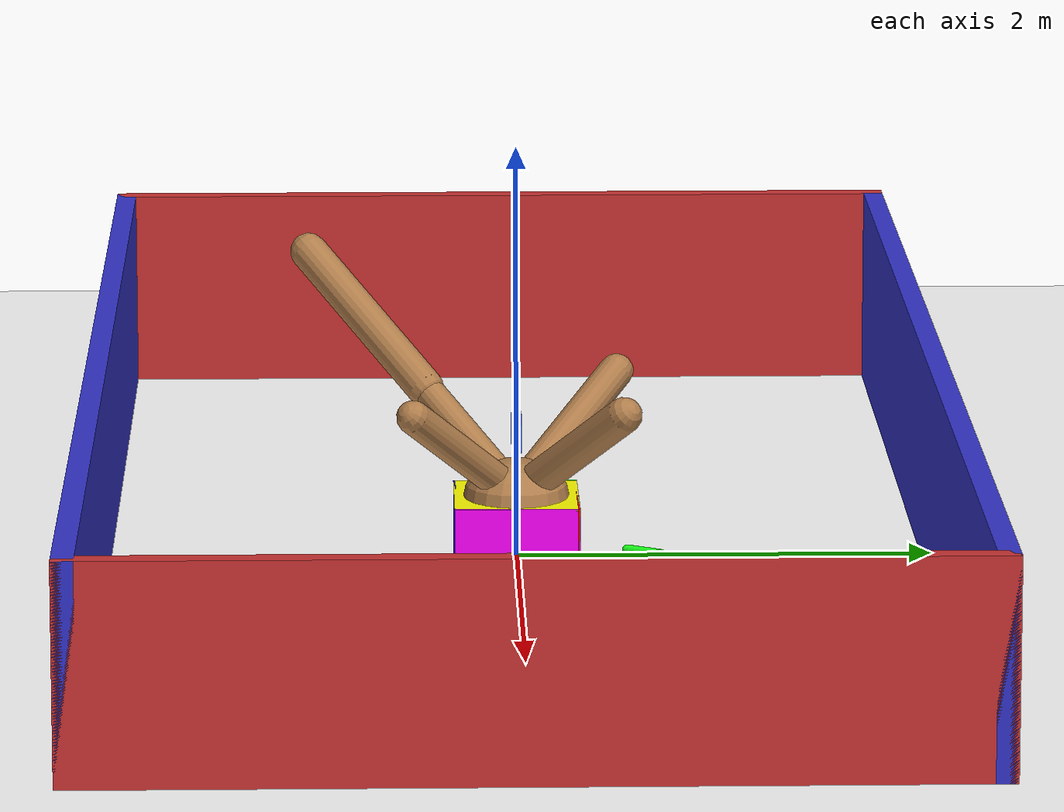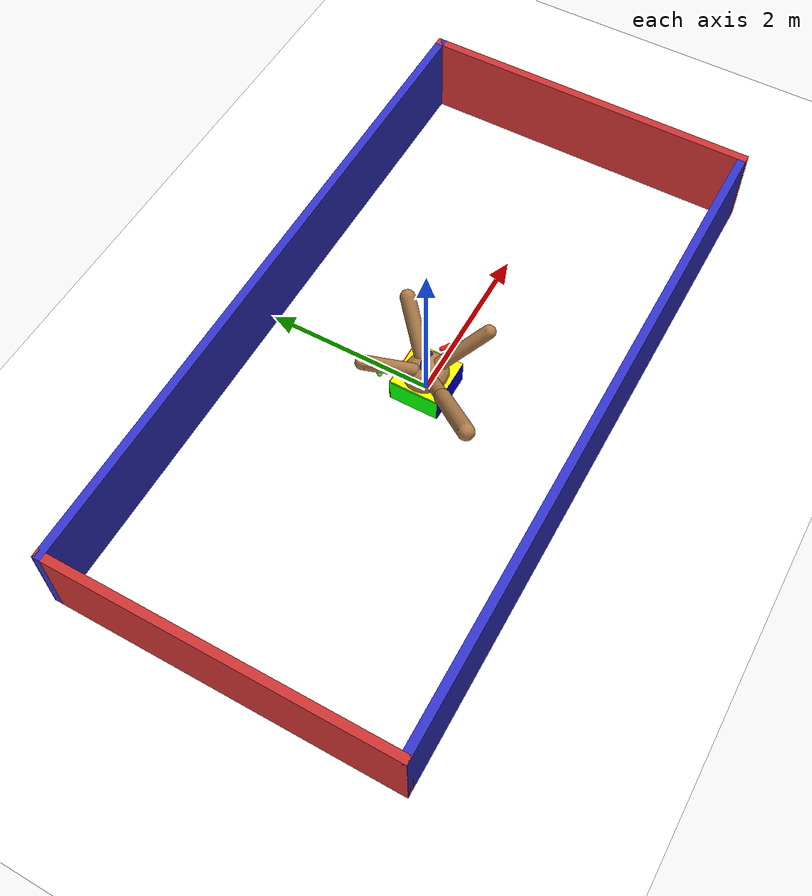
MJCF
<mujoco model="dex-gripper">
  <asset>
    <texture name="skybox" type="skybox" builtin="gradient" rgb1=".2 .3 .4" rgb2="0 0 0" width="800" height="800" mark="random" markrgb="1 1 1"/>
    <texture name="grid" type="2d" builtin="checker" rgb1=".2 .1 .2" rgb2=".3 .2 .3" width="300" height="300" mark="edge" markrgb=".3 .2 .3"/>
    <material name="grid" texture="grid" texrepeat="1 1" texuniform="true" reflectance=".2"/>
    <material name="self" rgba=".7 .5 .3 1"/>
  </asset>
  <visual>
    <headlight ambient=".4 .4 .4" diffuse=".8 .8 .8" specular="0.1 0.1 0.1"/>
    <map znear=".001"/>
    <quality shadowsize="16384"/>
  </visual>
  <compiler coordinate="local" angle="degree" inertiafromgeom="true"/>
  <option integrator="RK4" timestep="0.01"/>
  <default>
    <joint armature="1" damping="1" limited="true"/>
    <geom conaffinity="0" condim="3" density="5.0" friction="1 0.5 0.5" margin="0.01" rgba=".7 .5 .3 1"/>
  </default>
  <worldbody>
    <light cutoff="100" diffuse="1 1 1" dir="0.3 0 -1.3" directional="true" exponent="1" pos="-30 0 130" specular=".1 .1 .1"/>
    <geom conaffinity="1" condim="3" name="floor" pos="0 0 0" rgba="1 1 1 1" size="200 200 .125" type="plane" material="grid"/>
    <!-- Fixed gripper base: no root slide joints anymore -->
    <body name="0" pos="0 0 0.3" gravcomp="1">
      <camera name="track" mode="fixed" pos="0 10 5" quat="0 0 0.547 0.892"/>
      <geom pos="0 0 0" size="0.275641 0.254819 0.176864" type="ellipsoid"/>
      <!-- Arm 1: flipped upward -->
      <body name="1" pos="0 0 0" gravcomp="1">
        <joint axis="-0.707107 0.707107 0" name="1_joint" pos="0 0 0" range="-45 45" type="hinge" damping="0"/>
        <geom fromto="-0.058048 -0.059923 -0.059923 0.484351 0.499999 0.5" size="0.087405 0.087405 0.087405" type="capsule"/>
      </body>
      <!-- Arm 2: flipped upward -->
      <body name="2" pos="0 0 0" gravcomp="1">
        <joint axis="-0.707107 -0.707107 0" name="2_joint" pos="0 0 0" range="-45 45" type="hinge" damping="0"/>
        <geom fromto="0.065001 -0.064992 -0.065198 -0.498489 0.498425 0.5" size="0.083508 0.083508 0.083508" type="capsule"/>
      </body>
      <!-- Arm 3: flipped upward -->
      <body name="3" pos="0 0 0" gravcomp="1">
        <joint axis="0.707107 -0.707107 0" name="3_joint" pos="0 0 0" range="-45 45" type="hinge" damping="0"/>
        <geom fromto="0.048244 0.048335 -0.048481 -0.497556 -0.498497 0.5" size="0.077089 0.077089 0.077089" type="capsule"/>
        <body name="13" pos="-0.497556 -0.498497 0.5" gravcomp="1">
          <joint axis="0.707107 -0.707107 0" name="13_joint" pos="0 0 0" range="-45 45" type="hinge" damping="0"/>
          <geom fromto="0.064985 0.065341 -0.065346 -0.49724 -0.49996 0.5" size="0.090948 0.090948 0.090948" type="capsule"/>
        </body>
      </body>
      <!-- Arm 4: flipped upward -->
      <body name="4" pos="0 0 0" gravcomp="1">
        <joint axis="0.707107 0.707107 0" name="4_joint" pos="0 0 0" range="-45 45" type="hinge" damping="0"/>
        <geom fromto="-0.057089 0.056723 -0.057121 0.499721 -0.496519 0.5" size="0.0812 0.0812 0.0812" type="capsule"/>
      </body>
    </body>
    <!-- Box starts above the gripper -->
    <body name="box" pos="0 0 0">
      <freejoint name="box_joint"/>
      <!-- Top (Yellow) -->
      <geom name="box_top" type="box" pos="0 0 0.295" size="0.3 0.3 0.005" rgba="1 1 0 1" density="10" friction="2.5 0.1 0.05" contype="1" conaffinity="1"/>
      <!-- Bottom (White) -->
      <geom name="box_bottom" type="box" pos="0 0 -0.295" size="0.3 0.3 0.005" rgba="1 1 1 1" density="10" friction="2.5 0.1 0.05" contype="1" conaffinity="1"/>
      <!-- Front (Red) -->
      <geom name="box_front" type="box" pos="0 0.295 0" size="0.3 0.005 0.3" rgba="1 0 0 1" density="10" friction="2.5 0.1 0.05" contype="1" conaffinity="1"/>
      <!-- Back (Blue) -->
      <geom name="box_back" type="box" pos="0 -0.295 0" size="0.3 0.005 0.3" rgba="0 0 1 1" density="10" friction="2.5 0.1 0.05" contype="1" conaffinity="1"/>
      <!-- Left (Green) -->
      <geom name="box_left" type="box" pos="-0.295 0 0" size="0.005 0.3 0.3" rgba="0 1 0 1" density="10" friction="2.5 0.1 0.05" contype="1" conaffinity="1"/>
      <!-- Right (Magenta) -->
      <geom name="box_right" type="box" pos="0.295 0 0" size="0.005 0.3 0.3" rgba="1 0 1 1" density="10" friction="2.5 0.1 0.05" contype="1" conaffinity="1"/>
    </body>
    <!-- RGB arrows visualize the target orientation and never participate in collisions. -->
    <body name="goal_orientation_frame" pos="0 0 0">
      <!-- Goal X axis (red). -->
      <geom name="goal_axis_x_shaft" type="capsule" fromto="0 0 0 0.7 0 0" size="0.018" rgba="1 0.1 0.1 0.9" contype="0" conaffinity="0"/>
      <geom name="goal_axis_x_head_pos" type="capsule" fromto="0.7 0 0 0.54 0.1 0" size="0.025" rgba="1 0.1 0.1 0.9" contype="0" conaffinity="0"/>
      <geom name="goal_axis_x_head_neg" type="capsule" fromto="0.7 0 0 0.54 -0.1 0" size="0.025" rgba="1 0.1 0.1 0.9" contype="0" conaffinity="0"/>
      <!-- Goal Y axis (green). -->
      <geom name="goal_axis_y_shaft" type="capsule" fromto="0 0 0 0 0.7 0" size="0.018" rgba="0.1 1 0.1 0.9" contype="0" conaffinity="0"/>
      <geom name="goal_axis_y_head_pos" type="capsule" fromto="0 0.7 0 0.1 0.54 0" size="0.025" rgba="0.1 1 0.1 0.9" contype="0" conaffinity="0"/>
      <geom name="goal_axis_y_head_neg" type="capsule" fromto="0 0.7 0 -0.1 0.54 0" size="0.025" rgba="0.1 1 0.1 0.9" contype="0" conaffinity="0"/>
      <!-- Goal Z axis (blue). -->
      <geom name="goal_axis_z_shaft" type="capsule" fromto="0 0 0 0 0 0.7" size="0.018" rgba="0.1 0.3 1 0.9" contype="0" conaffinity="0"/>
      <geom name="goal_axis_z_head_pos" type="capsule" fromto="0 0 0.7 0.1 0 0.54" size="0.025" rgba="0.1 0.3 1 0.9" contype="0" conaffinity="0"/>
      <geom name="goal_axis_z_head_neg" type="capsule" fromto="0 0 0.7 -0.1 0 0.54" size="0.025" rgba="0.1 0.3 1 0.9" contype="0" conaffinity="0"/>
    </body>
    <body name="box_walls" pos="0 0 0">
      <geom name="wall_left" type="box" pos="-4.0 0 0.5" size="0.05 2.05 0.5" rgba="0.8 0.2 0.2 1" contype="1" conaffinity="1"/>
      <geom name="wall_right" type="box" pos="4.0 0 0.5" size="0.05 2.05 0.5" rgba="0.8 0.2 0.2 1" contype="1" conaffinity="1"/>
      <geom name="wall_front" type="box" pos="0 2.0 0.5" size="4.05 0.05 0.5" rgba="0.2 0.2 0.8 1" contype="1" conaffinity="1"/>
      <geom name="wall_back" type="box" pos="0 -2.0 0.5" size="4.05 0.05 0.5" rgba="0.2 0.2 0.8 1" contype="1" conaffinity="1"/>
    </body>
  </worldbody>
  <actuator>
    <!-- Only the finger joints remain actuated -->
    <motor ctrllimited="true" ctrlrange="-1.0 1.0" joint="1_joint" gear="42.069445" name="1_joint"/>
    <motor ctrllimited="true" ctrlrange="-1.0 1.0" joint="2_joint" gear="56.304074" name="2_joint"/>
    <motor ctrllimited="true" ctrlrange="-1.0 1.0" joint="3_joint" gear="48.439601" name="3_joint"/>
    <motor ctrllimited="true" ctrlrange="-1.0 1.0" joint="4_joint" gear="41.565212" name="4_joint"/>
    <motor ctrllimited="true" ctrlrange="-1.0 1.0" joint="13_joint" gear="48.355366" name="13_joint"/>
  </actuator>
</mujoco>
